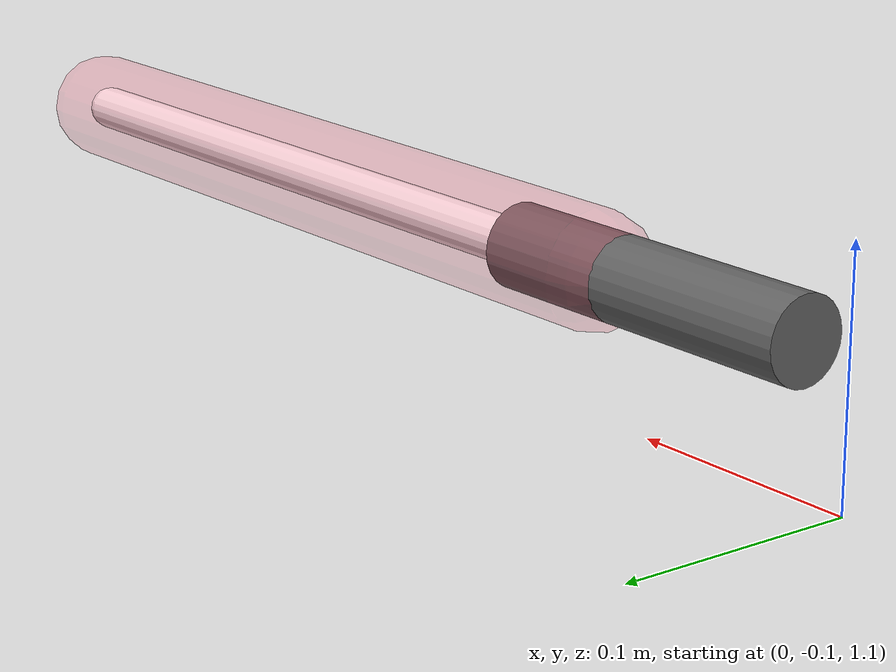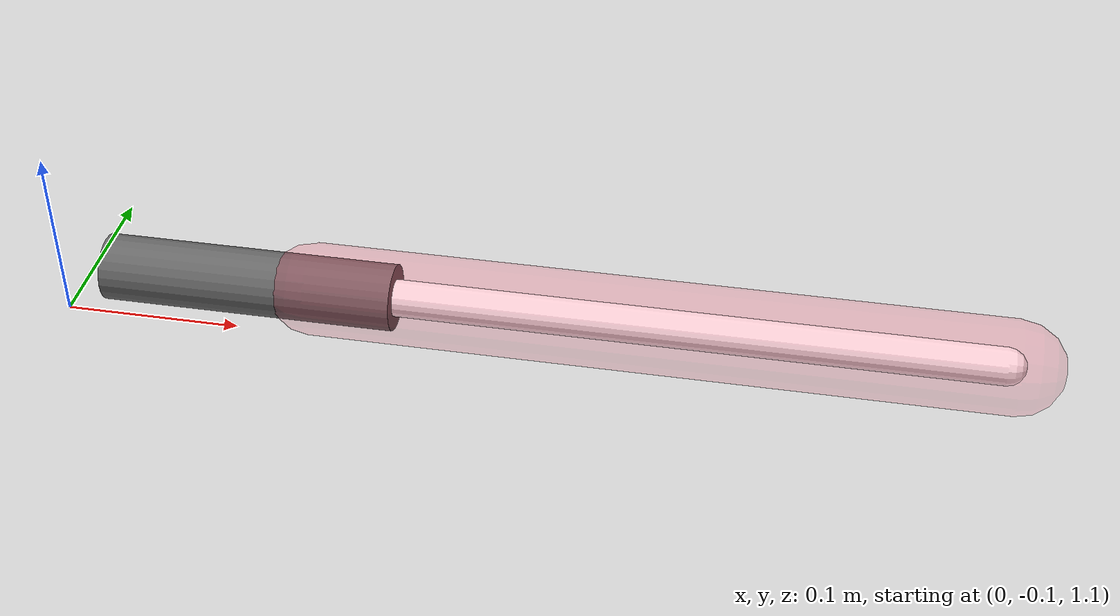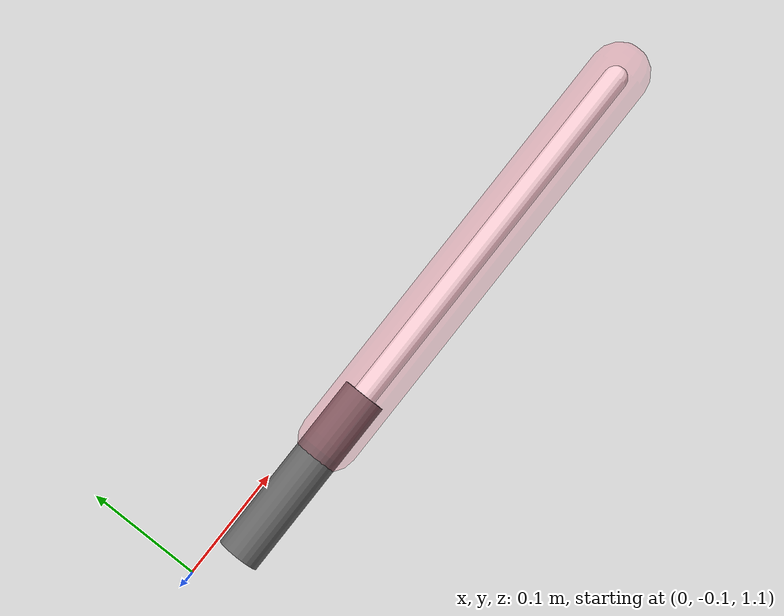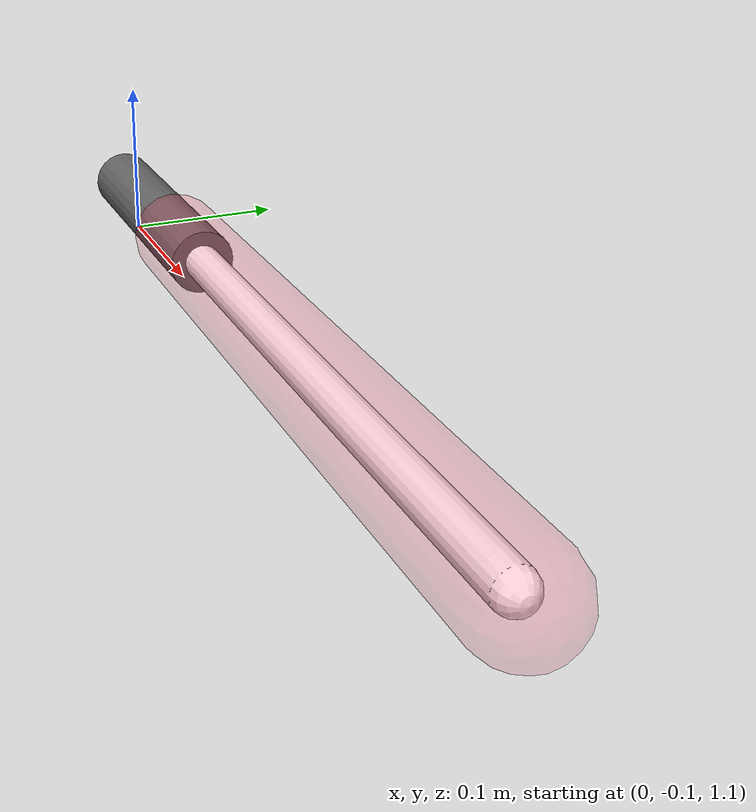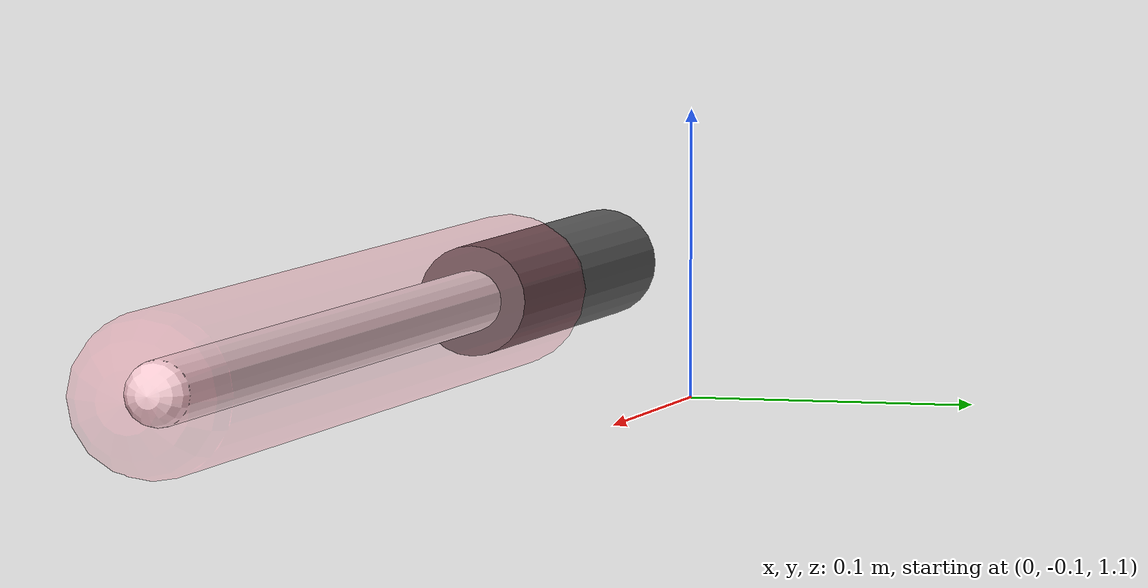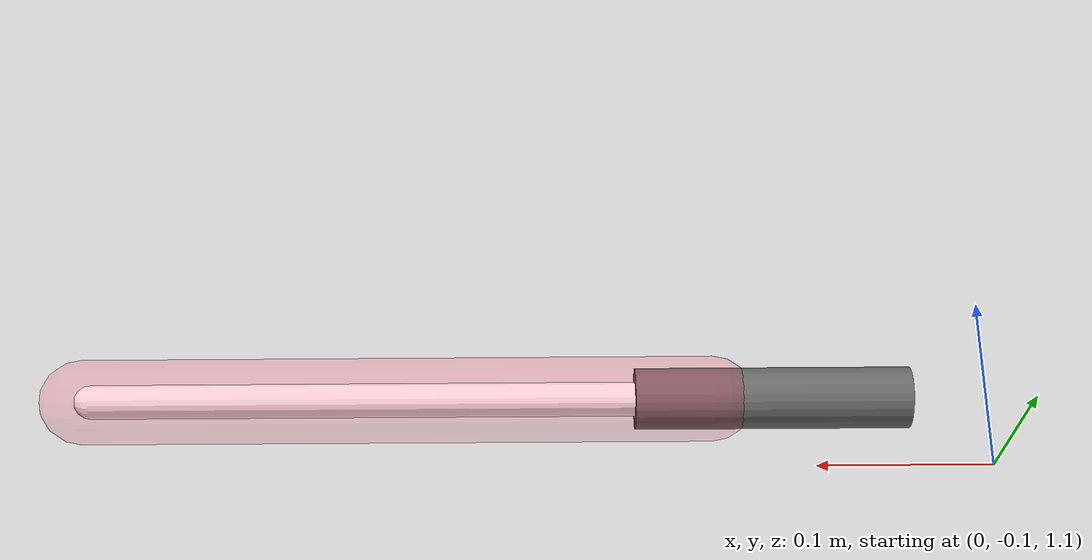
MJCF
<mujoco model="right_lightsaber">
  <compiler angle="radian"/>
  <option timestep="0.002"/>
  <asset>
    <material name="right_saber_red_core" rgba="1.0 0.08 0.08 1.0" emission="2" specular="0.05" shininess="0.05"/>
    <material name="right_saber_red_aura" rgba="1.0 0.18 0.32 0.05" emission="2"/>
  </asset>
  <worldbody>
    <body name="right_lightsaber" pos="0.06 -0.12 1.15" quat="0.7071067811865476 0.0 0.7071067811865476 0.0">
      <freejoint name="right_saber_freejoint"/>
      <geom name="right_saber_hilt" type="cylinder" pos="0 0 0.06" quat="1 0 0 0" size="0.018 0.08 0" rgba="0.4 0.4 0.4 1" mass="0.5" contype="1" conaffinity="1" condim="4"/>
      <geom name="right_saber_geom" type="capsule" pos="0 0 0.28" quat="1 0 0 0" size="0.01 0.18 0" rgba="1.0 1.0 1.0 1.0" mass="0.001" contype="1" conaffinity="1" condim="4" material="right_saber_red_core" friction="0.01 0.005 0.0001"/>
      <geom name="right_blade_aura" type="capsule" pos="0 0 0.28" quat="1 0 0 0" size="0.025 0.185 0" rgba="1.0 0.18 0.32 0.09" contype="0" conaffinity="0" material="right_saber_red_aura"/>
      <light name="right_saber_light" pos="0 0 0.35" dir="0 0 1" diffuse="1.0 0.35 0.55" specular="1.0 0.35 0.55" range="2.75" cutoff="180" castshadow="true"/>
      <site name="right_saber_tip" pos="0 0 0.46" size="0.01 0 0" rgba="1.0 0.35 0.35 0.2"/>
      <site name="right_saber_blade_base" pos="0 0 0.10000000000000003" size="0.01 0 0" rgba="1.0 0.35 0.35 0.0"/>
    </body>
  </worldbody>
  <sensor>
    <framelinvel name="right_saber_tip_linvel" objtype="site" objname="right_saber_tip"/>
    <velocimeter name="right_saber_tip_velocimeter" site="right_saber_tip"/>
  </sensor>
</mujoco>
